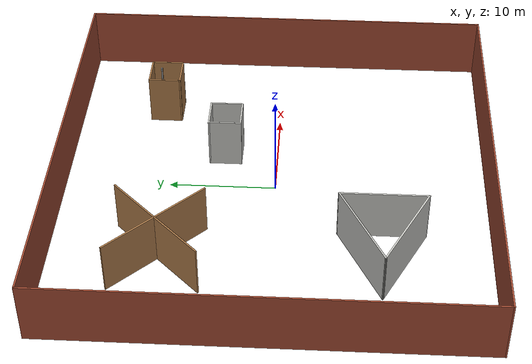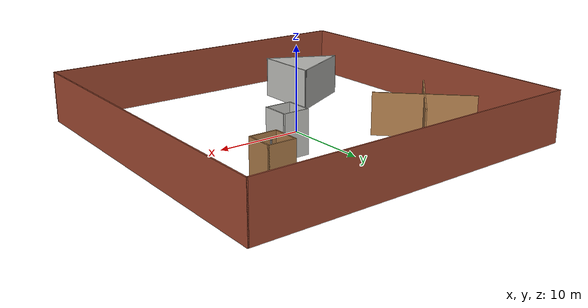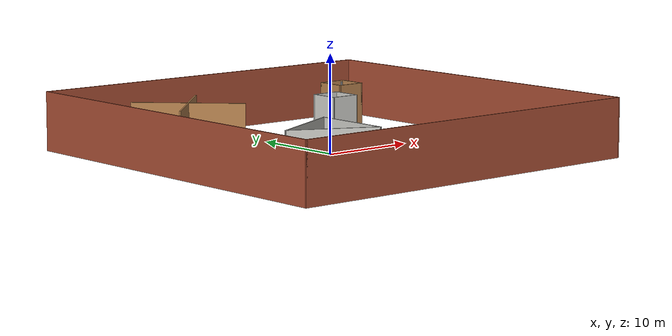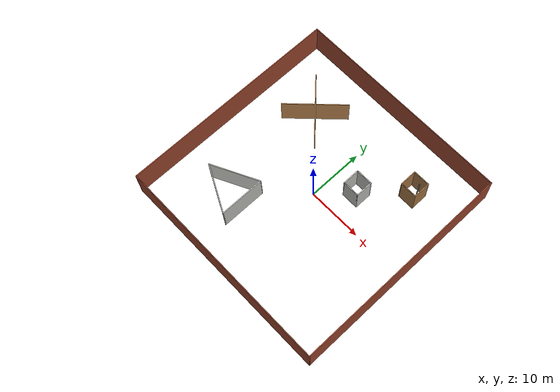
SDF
<?xml version='1.0'?>
<sdf version='1.6'>
  <model name='SAC_XSUGV'>
    <pose frame=''>0 0 0 0 -0 0</pose>
    <link name='Wall_11'>
      <collision name='Wall_11_Collision'>
        <geometry>
          <box>
            <size>40.15 0.15 6</size>
          </box>
        </geometry>
        <pose frame=''>0 0 3 0 -0 0</pose>
      </collision>
      <visual name='Wall_11_Visual'>
        <pose frame=''>0 0 3 0 -0 0</pose>
        <geometry>
          <box>
            <size>40.15 0.15 6</size>
          </box>
        </geometry>
        <material>
          <script>
            <uri>file://media/materials/scripts/gazebo.material</uri>
            <name>Gazebo/Bricks</name>
          </script>
          <ambient>1 1 1 1</ambient>
        </material>
        <meta>
          <layer>0</layer>
        </meta>
      </visual>
      <pose frame=''>0 20 0 0 -0 0</pose>
    </link>
    <link name='Wall_13'>
      <collision name='Wall_13_Collision'>
        <geometry>
          <box>
            <size>40.15 0.15 6</size>
          </box>
        </geometry>
        <pose frame=''>0 0 3 0 -0 0</pose>
      </collision>
      <visual name='Wall_13_Visual'>
        <pose frame=''>0 0 3 0 -0 0</pose>
        <geometry>
          <box>
            <size>40.15 0.15 6</size>
          </box>
        </geometry>
        <material>
          <script>
            <uri>file://media/materials/scripts/gazebo.material</uri>
            <name>Gazebo/Bricks</name>
          </script>
          <ambient>1 1 1 1</ambient>
        </material>
        <meta>
          <layer>0</layer>
        </meta>
      </visual>
      <pose frame=''>20 0 0 0 -0 -1.5708</pose>
    </link>
    <link name='Wall_15'>
      <collision name='Wall_15_Collision'>
        <geometry>
          <box>
            <size>3.15 0.15 5</size>
          </box>
        </geometry>
        <pose frame=''>0 0 2.5 0 -0 0</pose>
      </collision>
      <visual name='Wall_15_Visual'>
        <pose frame=''>0 0 2.5 0 -0 0</pose>
        <geometry>
          <box>
            <size>3.15 0.15 5</size>
          </box>
        </geometry>
        <material>
          <script>
            <uri>file://media/materials/scripts/gazebo.material</uri>
            <name>Gazebo/CeilingTiled</name>
          </script>
          <ambient>1 1 1 1</ambient>
        </material>
        <meta>
          <layer>0</layer>
        </meta>
      </visual>
      <pose frame=''>5 3.5 0 0 -0 0</pose>
    </link>
    <link name='Wall_17'>
      <collision name='Wall_17_Collision'>
        <geometry>
          <box>
            <size>3.15 0.15 5</size>
          </box>
        </geometry>
        <pose frame=''>0 0 2.5 0 -0 0</pose>
      </collision>
      <visual name='Wall_17_Visual'>
        <pose frame=''>0 0 2.5 0 -0 0</pose>
        <geometry>
          <box>
            <size>3.15 0.15 5</size>
          </box>
        </geometry>
        <material>
          <script>
            <uri>file://media/materials/scripts/gazebo.material</uri>
            <name>Gazebo/CeilingTiled</name>
          </script>
          <ambient>1 1 1 1</ambient>
        </material>
        <meta>
          <layer>0</layer>
        </meta>
      </visual>
      <pose frame=''>6.5 5 0 0 -0 1.5708</pose>
    </link>
    <link name='Wall_19'>
      <collision name='Wall_19_Collision'>
        <geometry>
          <box>
            <size>3.15 0.15 5</size>
          </box>
        </geometry>
        <pose frame=''>0 0 2.5 0 -0 0</pose>
      </collision>
      <visual name='Wall_19_Visual'>
        <pose frame=''>0 0 2.5 0 -0 0</pose>
        <geometry>
          <box>
            <size>3.15 0.15 5</size>
          </box>
        </geometry>
        <material>
          <script>
            <uri>file://media/materials/scripts/gazebo.material</uri>
            <name>Gazebo/CeilingTiled</name>
          </script>
          <ambient>1 1 1 1</ambient>
        </material>
        <meta>
          <layer>0</layer>
        </meta>
      </visual>
      <pose frame=''>5 6.5 0 0 -0 3.14159</pose>
    </link>
    <link name='Wall_21'>
      <collision name='Wall_21_Collision'>
        <geometry>
          <box>
            <size>3.15 0.15 5</size>
          </box>
        </geometry>
        <pose frame=''>0 0 2.5 0 -0 0</pose>
      </collision>
      <visual name='Wall_21_Visual'>
        <pose frame=''>0 0 2.5 0 -0 0</pose>
        <geometry>
          <box>
            <size>3.15 0.15 5</size>
          </box>
        </geometry>
        <material>
          <script>
            <uri>file://media/materials/scripts/gazebo.material</uri>
            <name>Gazebo/CeilingTiled</name>
          </script>
          <ambient>1 1 1 1</ambient>
        </material>
        <meta>
          <layer>0</layer>
        </meta>
      </visual>
      <pose frame=''>3.5 5 0 0 -0 -1.5708</pose>
    </link>
    <link name='Wall_24'>
      <collision name='Wall_24_Collision'>
        <geometry>
          <box>
            <size>0.15 0.15 5</size>
          </box>
        </geometry>
        <pose frame=''>0 0 2.5 0 -0 0</pose>
      </collision>
      <visual name='Wall_24_Visual'>
        <pose frame=''>0 0 2.5 0 -0 0</pose>
        <geometry>
          <box>
            <size>0.15 0.15 5</size>
          </box>
        </geometry>
        <material>
          <script>
            <uri>file://media/materials/scripts/gazebo.material</uri>
            <name>Gazebo/Grey</name>
          </script>
          <ambient>1 1 1 1</ambient>
        </material>
        <meta>
          <layer>0</layer>
        </meta>
      </visual>
      <pose frame=''>12 12 0 0 -0 0</pose>
    </link>
    <link name='Wall_37'>
      <collision name='Wall_37_Collision'>
        <geometry>
          <box>
            <size>3.15 0.15 5</size>
          </box>
        </geometry>
        <pose frame=''>0 0 2.5 0 -0 0</pose>
      </collision>
      <visual name='Wall_37_Visual'>
        <pose frame=''>0 0 2.5 0 -0 0</pose>
        <geometry>
          <box>
            <size>3.15 0.15 5</size>
          </box>
        </geometry>
        <material>
          <script>
            <uri>file://media/materials/scripts/gazebo.material</uri>
            <name>Gazebo/Wood</name>
          </script>
          <ambient>1 1 1 1</ambient>
        </material>
        <meta>
          <layer>0</layer>
        </meta>
      </visual>
      <pose frame=''>10 11.5 0 0 -0 1.5708</pose>
    </link>
    <link name='Wall_39'>
      <collision name='Wall_39_Collision'>
        <geometry>
          <box>
            <size>3.15 0.15 5</size>
          </box>
        </geometry>
        <pose frame=''>0 0 2.5 0 -0 0</pose>
      </collision>
      <visual name='Wall_39_Visual'>
        <pose frame=''>0 0 2.5 0 -0 0</pose>
        <geometry>
          <box>
            <size>3.15 0.15 5</size>
          </box>
        </geometry>
        <material>
          <script>
            <uri>file://media/materials/scripts/gazebo.material</uri>
            <name>Gazebo/Wood</name>
          </script>
          <ambient>1 1 1 1</ambient>
        </material>
        <meta>
          <layer>0</layer>
        </meta>
      </visual>
      <pose frame=''>11.5 10 0 0 -0 0</pose>
    </link>
    <link name='Wall_41'>
      <collision name='Wall_41_Collision'>
        <geometry>
          <box>
            <size>3.15 0.15 5</size>
          </box>
        </geometry>
        <pose frame=''>0 0 2.5 0 -0 0</pose>
      </collision>
      <visual name='Wall_41_Visual'>
        <pose frame=''>0 0 2.5 0 -0 0</pose>
        <geometry>
          <box>
            <size>3.15 0.15 5</size>
          </box>
        </geometry>
        <material>
          <script>
            <uri>file://media/materials/scripts/gazebo.material</uri>
            <name>Gazebo/Wood</name>
          </script>
          <ambient>1 1 1 1</ambient>
        </material>
        <meta>
          <layer>0</layer>
        </meta>
      </visual>
      <pose frame=''>13 11.5 0 0 -0 1.5708</pose>
    </link>
    <link name='Wall_43'>
      <collision name='Wall_43_Collision'>
        <geometry>
          <box>
            <size>3.15 0.15 5</size>
          </box>
        </geometry>
        <pose frame=''>0 0 2.5 0 -0 0</pose>
      </collision>
      <visual name='Wall_43_Visual'>
        <pose frame=''>0 0 2.5 0 -0 0</pose>
        <geometry>
          <box>
            <size>3.15 0.15 5</size>
          </box>
        </geometry>
        <material>
          <script>
            <uri>file://media/materials/scripts/gazebo.material</uri>
            <name>Gazebo/Wood</name>
          </script>
          <ambient>1 1 1 1</ambient>
        </material>
        <meta>
          <layer>0</layer>
        </meta>
      </visual>
      <pose frame=''>11.5 13 0 0 -0 3.14159</pose>
    </link>
    <link name='Wall_45'>
      <collision name='Wall_45_Collision'>
        <geometry>
          <box>
            <size>11.4637 0.15 5</size>
          </box>
        </geometry>
        <pose frame=''>0 0 2.5 0 -0 0</pose>
      </collision>
      <visual name='Wall_45_Visual'>
        <pose frame=''>0 0 2.5 0 -0 0</pose>
        <geometry>
          <box>
            <size>11.4637 0.15 5</size>
          </box>
        </geometry>
        <material>
          <script>
            <uri>file://media/materials/scripts/gazebo.material</uri>
            <name>Gazebo/Wood</name>
          </script>
          <ambient>1 1 1 1</ambient>
        </material>
        <meta>
          <layer>0</layer>
        </meta>
      </visual>
      <pose frame=''>-10 10 0 0 -0 -0.785398</pose>
    </link>
    <link name='Wall_47'>
      <collision name='Wall_47_Collision'>
        <geometry>
          <box>
            <size>11.4637 0.15 5</size>
          </box>
        </geometry>
        <pose frame=''>0 0 2.5 0 -0 0</pose>
      </collision>
      <visual name='Wall_47_Visual'>
        <pose frame=''>0 0 2.5 0 -0 0</pose>
        <geometry>
          <box>
            <size>11.4637 0.15 5</size>
          </box>
        </geometry>
        <material>
          <script>
            <uri>file://media/materials/scripts/gazebo.material</uri>
            <name>Gazebo/Wood</name>
          </script>
          <ambient>1 1 1 1</ambient>
        </material>
        <meta>
          <layer>0</layer>
        </meta>
      </visual>
      <pose frame=''>-10 10 0 0 -0 0.785398</pose>
    </link>
    <link name='Wall_49'>
      <collision name='Wall_49_Collision'>
        <geometry>
          <box>
            <size>8.15 0.15 5</size>
          </box>
        </geometry>
        <pose frame=''>0 0 2.5 0 -0 0</pose>
      </collision>
      <visual name='Wall_49_Visual'>
        <pose frame=''>0 0 2.5 0 -0 0</pose>
        <geometry>
          <box>
            <size>8.15 0.15 5</size>
          </box>
        </geometry>
        <material>
          <script>
            <uri>file://media/materials/scripts/gazebo.material</uri>
            <name>Gazebo/CeilingTiled</name>
          </script>
          <ambient>1 1 1 1</ambient>
        </material>
        <meta>
          <layer>0</layer>
        </meta>
      </visual>
      <pose frame=''>-6 -10 0 0 -0 -1.5708</pose>
    </link>
    <link name='Wall_51'>
      <collision name='Wall_51_Collision'>
        <geometry>
          <box>
            <size>9.09427 0.15 5</size>
          </box>
        </geometry>
        <pose frame=''>0 0 2.5 0 -0 0</pose>
      </collision>
      <visual name='Wall_51_Visual'>
        <pose frame=''>0 0 2.5 0 -0 0</pose>
        <geometry>
          <box>
            <size>9.09427 0.15 5</size>
          </box>
        </geometry>
        <material>
          <script>
            <uri>file://media/materials/scripts/gazebo.material</uri>
            <name>Gazebo/CeilingTiled</name>
          </script>
          <ambient>1 1 1 1</ambient>
        </material>
        <meta>
          <layer>0</layer>
        </meta>
      </visual>
      <pose frame=''>-10 -8 0 0 -0 -2.67794</pose>
    </link>
    <link name='Wall_53'>
      <collision name='Wall_53_Collision'>
        <geometry>
          <box>
            <size>9.09427 0.15 5</size>
          </box>
        </geometry>
        <pose frame=''>0 0 2.5 0 -0 0</pose>
      </collision>
      <visual name='Wall_53_Visual'>
        <pose frame=''>0 0 2.5 0 -0 0</pose>
        <geometry>
          <box>
            <size>9.09427 0.15 5</size>
          </box>
        </geometry>
        <material>
          <script>
            <uri>file://media/materials/scripts/gazebo.material</uri>
            <name>Gazebo/CeilingTiled</name>
          </script>
          <ambient>1 1 1 1</ambient>
        </material>
        <meta>
          <layer>0</layer>
        </meta>
      </visual>
      <pose frame=''>-10 -12 0 0 -0 2.67794</pose>
    </link>
    <link name='Wall_7'>
      <collision name='Wall_7_Collision'>
        <geometry>
          <box>
            <size>40.15 0.15 6</size>
          </box>
        </geometry>
        <pose frame=''>0 0 3 0 -0 0</pose>
      </collision>
      <visual name='Wall_7_Visual'>
        <pose frame=''>0 0 3 0 -0 0</pose>
        <geometry>
          <box>
            <size>40.15 0.15 6</size>
          </box>
        </geometry>
        <material>
          <script>
            <uri>file://media/materials/scripts/gazebo.material</uri>
            <name>Gazebo/Bricks</name>
          </script>
          <ambient>1 1 1 1</ambient>
        </material>
        <meta>
          <layer>0</layer>
        </meta>
      </visual>
      <pose frame=''>0 -20 0 0 -0 0</pose>
    </link>
    <link name='Wall_9'>
      <collision name='Wall_9_Collision'>
        <geometry>
          <box>
            <size>40.15 0.15 6</size>
          </box>
        </geometry>
        <pose frame=''>0 0 3 0 -0 0</pose>
      </collision>
      <visual name='Wall_9_Visual'>
        <pose frame=''>0 0 3 0 -0 0</pose>
        <geometry>
          <box>
            <size>40.15 0.15 6</size>
          </box>
        </geometry>
        <material>
          <script>
            <uri>file://media/materials/scripts/gazebo.material</uri>
            <name>Gazebo/Bricks</name>
          </script>
          <ambient>1 1 1 1</ambient>
        </material>
        <meta>
          <layer>0</layer>
        </meta>
      </visual>
      <pose frame=''>-20 0 0 0 -0 1.5708</pose>
    </link>
    <static>1</static>
  </model>
</sdf>
